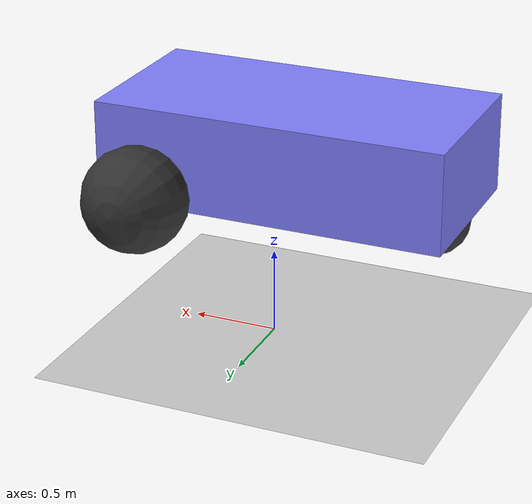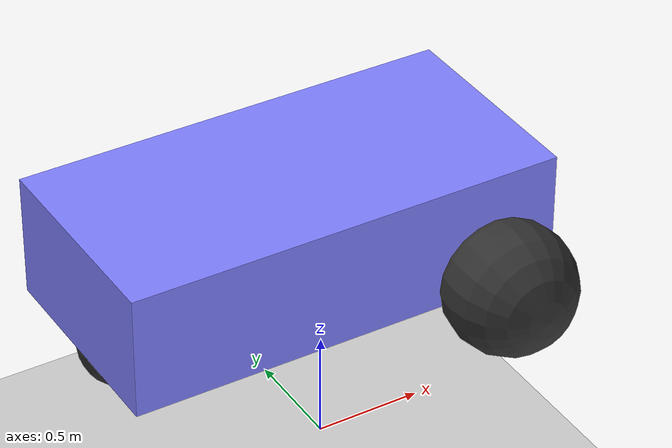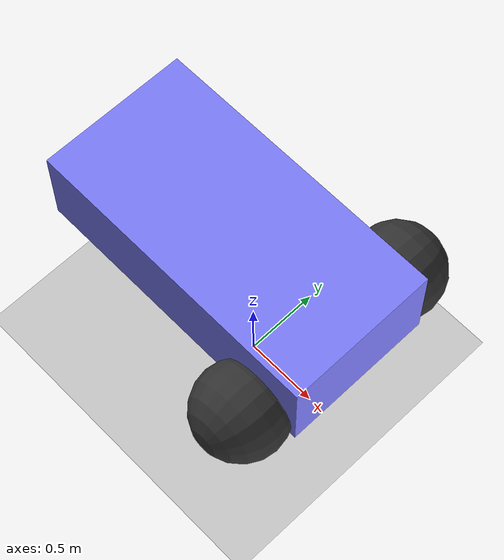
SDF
<?xml version="1.0" ?>
<sdf version="1.8">
  <world name="demo">

    <spherical_coordinates>
      <surface_model>EARTH_WGS84</surface_model>
      <world_frame_orientation>ENU</world_frame_orientation>
      <latitude_deg>38.161479</latitude_deg>
      <longitude_deg>-122.454630</longitude_deg>
      <elevation>0</elevation>
      <heading_deg>0</heading_deg>
    </spherical_coordinates>

    <light name="sun" type="directional">
      <cast_shadows>true</cast_shadows>
      <pose>0 0 10 0 0 0</pose>
      <diffuse>0.8 0.8 0.8 1</diffuse>
      <specular>0.2 0.2 0.2 1</specular>
      <attenuation>
        <range>1000</range>
        <constant>0.9</constant>
        <linear>0.01</linear>
        <quadratic>0.001</quadratic>
      </attenuation>
      <direction>-0.5 0.1 -0.9</direction>
    </light>

    <model name="ground_plane">
      <static>true</static>
      <link name="link">
        <collision name="collision">
          <geometry>
            <plane>
              <normal>0 0 1</normal>
              <size>100 100</size>
            </plane>
          </geometry>
        </collision>
        <visual name="visual">
          <geometry>
            <plane>
              <normal>0 0 1</normal>
              <size>100 100</size>
            </plane>
          </geometry>
          <material>
            <ambient>0.8 0.8 0.8 1</ambient>
            <diffuse>0.8 0.8 0.8 1</diffuse>
            <specular>0.8 0.8 0.8 1</specular>
          </material>
        </visual>
      </link>
    </model>

    <model name="vehicle">
      <self_collide>true</self_collide>
      <pose>0 0 1 0 0 0</pose>
      <include merge="true">
        <uri>package://simulation/models/vehicle</uri>
      </include>

      <plugin
        filename="gz-sim-joint-state-publisher-system"
        name="gz::sim::systems::JointStatePublisher"/>

      <plugin
        filename="gz-sim-navsat-system"
        name="gz::sim::systems::NavSat"/>

    </model>
  </world>
</sdf>

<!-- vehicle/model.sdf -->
<sdf version="1.8">
    <model name='vehicle'>
      <link name='chassis'>
        <pose>-0.151427 -0 0.175 0 -0 0</pose>
        <inertial>
          <mass>1.14395</mass>
          <inertia>
            <ixx>0.126164</ixx>
            <ixy>0</ixy>
            <ixz>0</ixz>
            <iyy>0.416519</iyy>
            <iyz>0</iyz>
            <izz>0.481014</izz>
          </inertia>
        </inertial>
        <visual name='visual_chassis'>
          <geometry>
            <box>
              <size>2.01142 1 0.568726</size>
            </box>
          </geometry>
          <material>
            <ambient>0.5 0.5 1.0 1</ambient>
            <diffuse>0.5 0.5 1.0 1</diffuse>
            <specular>0.0 0.0 1.0 1</specular>
          </material>
        </visual>
        <collision name='collision_chassis'>
          <geometry>
            <box>
              <size>2.01142 1 0.568726</size>
            </box>
          </geometry>
        </collision>
      </link>

      <link name='left_wheel'>
        <pose>0.554283 0.625029 -0.025 -1.5707 0 0</pose>
        <inertial>
          <mass>2</mass>
          <inertia>
            <ixx>0.145833</ixx>
            <ixy>0</ixy>
            <ixz>0</ixz>
            <iyy>0.145833</iyy>
            <iyz>0</iyz>
            <izz>0.125</izz>
          </inertia>
        </inertial>
        <visual name='visual_left_wheel'>
          <geometry>
            <sphere>
              <radius>0.3</radius>
            </sphere>
          </geometry>
          <material>
            <ambient>0.2 0.2 0.2 1</ambient>
            <diffuse>0.2 0.2 0.2 1</diffuse>
            <specular>0.2 0.2 0.2 1</specular>
          </material>
        </visual>
        <collision name='collision_left_wheel'>
          <geometry>
            <sphere>
              <radius>0.3</radius>
            </sphere>
          </geometry>
        </collision>
      </link>

      <link name='right_wheel'>
        <pose>0.554282 -0.625029 -0.025 -1.5707 0 0</pose>
        <inertial>
          <mass>2</mass>
          <inertia>
            <ixx>0.145833</ixx>
            <ixy>0</ixy>
            <ixz>0</ixz>
            <iyy>0.145833</iyy>
            <iyz>0</iyz>
            <izz>0.125</izz>
          </inertia>
        </inertial>
        <visual name='visual_right_wheel'>
          <geometry>
            <sphere>
              <radius>0.3</radius>
            </sphere>
          </geometry>
          <material>
            <ambient>0.2 0.2 0.2 1</ambient>
            <diffuse>0.2 0.2 0.2 1</diffuse>
            <specular>0.2 0.2 0.2 1</specular>
          </material>
        </visual>
        <collision name='collision_right_wheel'>
          <geometry>
            <sphere>
              <radius>0.3</radius>
            </sphere>
          </geometry>
        </collision>
      </link>

      <link name='caster'>
        <pose>-0.957138 -0 -0.125 0 -0 0</pose>
        <inertial>
          <mass>1</mass>
          <inertia>
            <ixx>0.1</ixx>
            <ixy>0</ixy>
            <ixz>0</ixz>
            <iyy>0.1</iyy>
            <iyz>0</iyz>
            <izz>0.1</izz>
          </inertia>
        </inertial>
        <visual name='visual_caster'>
          <geometry>
            <sphere>
              <radius>0.2</radius>
            </sphere>
          </geometry>
          <material>
            <ambient>0.2 0.2 0.2 1</ambient>
            <diffuse>0.2 0.2 0.2 1</diffuse>
            <specular>0.2 0.2 0.2 1</specular>
          </material>
        </visual>
        <collision name='collision_caster'>
          <geometry>
            <sphere>
              <radius>0.2</radius>
            </sphere>
          </geometry>
        </collision>
      </link>

      <link name='gps'>
        <sensor name='navsat' type='navsat'>
          <always_on>true</always_on>
        </sensor>
      </link>

      <joint name='left_wheel_joint' type='revolute'>
        <parent>chassis</parent>
        <child>left_wheel</child>
        <axis>
          <xyz>0 0 1</xyz>
          <limit>
            <lower>-1.79769e+308</lower>
            <upper>1.79769e+308</upper>
          </limit>
        </axis>
      </joint>

      <joint name='right_wheel_joint' type='revolute'>
        <parent>chassis</parent>
        <child>right_wheel</child>
        <axis>
          <xyz>0 0 1</xyz>
          <limit>
            <lower>-1.79769e+308</lower>
            <upper>1.79769e+308</upper>
          </limit>
        </axis>
      </joint>

      <joint name='caster_wheel' type='ball'>
        <parent>chassis</parent>
        <child>caster</child>
      </joint>

      <joint name='gps_sensor' type='fixed'>
        <parent>chassis</parent>
        <child>gps</child>
        <pose>0 0 0.5 0 0 0</pose>
      </joint>

      <plugin
        filename="gz-sim-diff-drive-system"
        name="gz::sim::systems::DiffDrive">
        <left_joint>left_wheel_joint</left_joint>
        <right_joint>right_wheel_joint</right_joint>
        <wheel_separation>1.25</wheel_separation>
        <wheel_radius>0.3</wheel_radius>
        <odom_publish_frequency>1</odom_publish_frequency>
      </plugin>

    </model>
</sdf>
